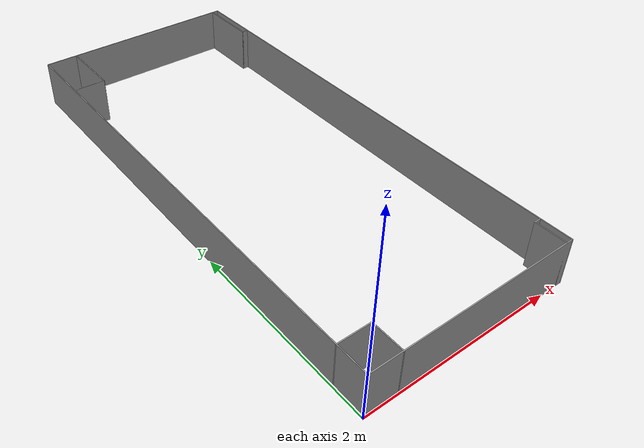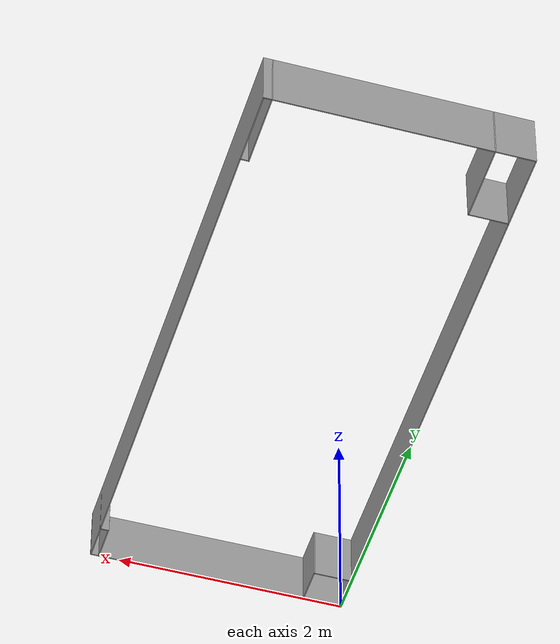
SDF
<?xml version='1.0'?>
<sdf version='1.7'>
  <model name='c205'>
    <pose>1.125 2.62946 0 0 -0 0</pose>
    <link name='Wall_12'>
      <collision name='Wall_12_Collision'>
        <geometry>
          <box>
            <size>5.27 0.01 0.5</size>
          </box>
        </geometry>
        <pose>0 0 0.25 0 -0 0</pose>
      </collision>
      <visual name='Wall_12_Visual'>
        <pose>0 0 0.25 0 -0 0</pose>
        <geometry>
          <box>
            <size>5.27 0.01 0.5</size>
          </box>
        </geometry>
        <material>
          <script>
            <uri>file://media/materials/scripts/gazebo.material</uri>
            <name>Gazebo/Grey</name>
          </script>
          <ambient>1 1 1 1</ambient>
        </material>
        <meta>
          <layer>0</layer>
        </meta>
      </visual>
      <pose>-1.125 0.000538 0 0 -0 1.5708</pose>
    </link>
    <link name='Wall_17'>
      <collision name='Wall_17_Collision'>
        <geometry>
          <box>
            <size>2.26 0.01 0.5</size>
          </box>
        </geometry>
        <pose>0 0 0.25 0 -0 0</pose>
      </collision>
      <visual name='Wall_17_Visual'>
        <pose>0 0 0.25 0 -0 0</pose>
        <geometry>
          <box>
            <size>2.26 0.01 0.5</size>
          </box>
        </geometry>
        <material>
          <script>
            <uri>file://media/materials/scripts/gazebo.material</uri>
            <name>Gazebo/Grey</name>
          </script>
          <ambient>1 1 1 1</ambient>
        </material>
        <meta>
          <layer>0</layer>
        </meta>
      </visual>
      <pose>-0 2.63054 0 0 -0 0</pose>
    </link>
    <link name='Wall_19'>
      <collision name='Wall_19_Collision'>
        <geometry>
          <box>
            <size>5.27 0.01 0.5</size>
          </box>
        </geometry>
        <pose>0 0 0.25 0 -0 0</pose>
      </collision>
      <visual name='Wall_19_Visual'>
        <pose>0 0 0.25 0 -0 0</pose>
        <geometry>
          <box>
            <size>5.27 0.01 0.5</size>
          </box>
        </geometry>
        <material>
          <script>
            <uri>file://media/materials/scripts/gazebo.material</uri>
            <name>Gazebo/Grey</name>
          </script>
          <ambient>1 1 1 1</ambient>
        </material>
        <meta>
          <layer>0</layer>
        </meta>
      </visual>
      <pose>1.125 0.000538 0 0 -0 -1.5708</pose>
    </link>
    <link name='Wall_2'>
      <collision name='Wall_2_Collision'>
        <geometry>
          <box>
            <size>2.26 0.01 0.5</size>
          </box>
        </geometry>
        <pose>0 0 0.25 0 -0 0</pose>
      </collision>
      <visual name='Wall_2_Visual'>
        <pose>0 0 0.25 0 -0 0</pose>
        <geometry>
          <box>
            <size>2.26 0.01 0.5</size>
          </box>
        </geometry>
        <material>
          <script>
            <uri>file://media/materials/scripts/gazebo.material</uri>
            <name>Gazebo/Grey</name>
          </script>
          <ambient>1 1 1 1</ambient>
        </material>
        <meta>
          <layer>0</layer>
        </meta>
      </visual>
      <pose>-0 -2.62946 0 0 -0 0</pose>
    </link>
    <link name='Wall_27'>
      <collision name='Wall_27_Collision'>
        <geometry>
          <box>
            <size>0.35 0.01 0.5</size>
          </box>
        </geometry>
        <pose>0 0 0.25 0 -0 0</pose>
      </collision>
      <visual name='Wall_27_Visual'>
        <pose>0 0 0.25 0 -0 0</pose>
        <geometry>
          <box>
            <size>0.35 0.01 0.5</size>
          </box>
        </geometry>
        <material>
          <script>
            <uri>file://media/materials/scripts/gazebo.material</uri>
            <name>Gazebo/Grey</name>
          </script>
          <ambient>1 1 1 1</ambient>
        </material>
        <meta>
          <layer>0</layer>
        </meta>
      </visual>
      <pose>-0.955 -2.30046 0 0 -0 0</pose>
    </link>
    <link name='Wall_28'>
      <collision name='Wall_28_Collision'>
        <geometry>
          <box>
            <size>0.340151 0.01 0.5</size>
          </box>
        </geometry>
        <pose>0 0 0.25 0 -0 0</pose>
      </collision>
      <visual name='Wall_28_Visual'>
        <pose>0 0 0.25 0 -0 0</pose>
        <geometry>
          <box>
            <size>0.340151 0.01 0.5</size>
          </box>
        </geometry>
        <material>
          <script>
            <uri>file://media/materials/scripts/gazebo.material</uri>
            <name>Gazebo/Grey</name>
          </script>
          <ambient>1 1 1 1</ambient>
        </material>
        <meta>
          <layer>0</layer>
        </meta>
      </visual>
      <pose>-0.785 -2.46546 0 0 -0 -1.5708</pose>
    </link>
    <link name='Wall_30'>
      <collision name='Wall_30_Collision'>
        <geometry>
          <box>
            <size>0.35 0.01 0.5</size>
          </box>
        </geometry>
        <pose>0 0 0.25 0 -0 0</pose>
      </collision>
      <visual name='Wall_30_Visual'>
        <pose>0 0 0.25 0 -0 0</pose>
        <geometry>
          <box>
            <size>0.35 0.01 0.5</size>
          </box>
        </geometry>
        <material>
          <script>
            <uri>file://media/materials/scripts/gazebo.material</uri>
            <name>Gazebo/Grey</name>
          </script>
          <ambient>1 1 1 1</ambient>
        </material>
        <meta>
          <layer>0</layer>
        </meta>
      </visual>
      <pose>-0.955 1.95054 0 0 -0 0</pose>
    </link>
    <link name='Wall_31'>
      <collision name='Wall_31_Collision'>
        <geometry>
          <box>
            <size>0.69 0.01 0.5</size>
          </box>
        </geometry>
        <pose>0 0 0.25 0 -0 0</pose>
      </collision>
      <visual name='Wall_31_Visual'>
        <pose>0 0 0.25 0 -0 0</pose>
        <geometry>
          <box>
            <size>0.69 0.01 0.5</size>
          </box>
        </geometry>
        <material>
          <script>
            <uri>file://media/materials/scripts/gazebo.material</uri>
            <name>Gazebo/Grey</name>
          </script>
          <ambient>1 1 1 1</ambient>
        </material>
        <meta>
          <layer>0</layer>
        </meta>
      </visual>
      <pose>-0.785 2.29054 0 0 -0 1.5708</pose>
    </link>
    <link name='Wall_34'>
      <collision name='Wall_34_Collision'>
        <geometry>
          <box>
            <size>0.66 0.01 0.5</size>
          </box>
        </geometry>
        <pose>0 0 0.25 0 -0 0</pose>
      </collision>
      <visual name='Wall_34_Visual'>
        <pose>0 0 0.25 0 -0 0</pose>
        <geometry>
          <box>
            <size>0.66 0.01 0.5</size>
          </box>
        </geometry>
        <material>
          <script>
            <uri>file://media/materials/scripts/gazebo.material</uri>
            <name>Gazebo/Grey</name>
          </script>
          <ambient>1 1 1 1</ambient>
        </material>
        <meta>
          <layer>0</layer>
        </meta>
      </visual>
      <pose>1.055 2.30554 0 0 -0 -1.5708</pose>
    </link>
    <link name='Wall_35'>
      <collision name='Wall_35_Collision'>
        <geometry>
          <box>
            <size>0.08 0.01 0.5</size>
          </box>
        </geometry>
        <pose>0 0 0.25 0 -0 0</pose>
      </collision>
      <visual name='Wall_35_Visual'>
        <pose>0 0 0.25 0 -0 0</pose>
        <geometry>
          <box>
            <size>0.08 0.01 0.5</size>
          </box>
        </geometry>
        <material>
          <script>
            <uri>file://media/materials/scripts/gazebo.material</uri>
            <name>Gazebo/Grey</name>
          </script>
          <ambient>1 1 1 1</ambient>
        </material>
        <meta>
          <layer>0</layer>
        </meta>
      </visual>
      <pose>1.09 1.98054 0 0 -0 0</pose>
    </link>
    <link name='Wall_39'>
      <collision name='Wall_39_Collision'>
        <geometry>
          <box>
            <size>0.33 0.01 0.5</size>
          </box>
        </geometry>
        <pose>0 0 0.25 0 -0 0</pose>
      </collision>
      <visual name='Wall_39_Visual'>
        <pose>0 0 0.25 0 -0 0</pose>
        <geometry>
          <box>
            <size>0.33 0.01 0.5</size>
          </box>
        </geometry>
        <material>
          <script>
            <uri>file://media/materials/scripts/gazebo.material</uri>
            <name>Gazebo/Grey</name>
          </script>
          <ambient>1 1 1 1</ambient>
        </material>
        <meta>
          <layer>0</layer>
        </meta>
      </visual>
      <pose>1.055 -2.46946 0 0 -0 1.5708</pose>
    </link>
    <link name='Wall_40'>
      <collision name='Wall_40_Collision'>
        <geometry>
          <box>
            <size>0.08 0.01 0.5</size>
          </box>
        </geometry>
        <pose>0 0 0.25 0 -0 0</pose>
      </collision>
      <visual name='Wall_40_Visual'>
        <pose>0 0 0.25 0 -0 0</pose>
        <geometry>
          <box>
            <size>0.08 0.01 0.5</size>
          </box>
        </geometry>
        <material>
          <script>
            <uri>file://media/materials/scripts/gazebo.material</uri>
            <name>Gazebo/Grey</name>
          </script>
          <ambient>1 1 1 1</ambient>
        </material>
        <meta>
          <layer>0</layer>
        </meta>
      </visual>
      <pose>1.09 -2.30946 0 0 -0 0</pose>
    </link>
    <static>1</static>
  </model>
</sdf>
